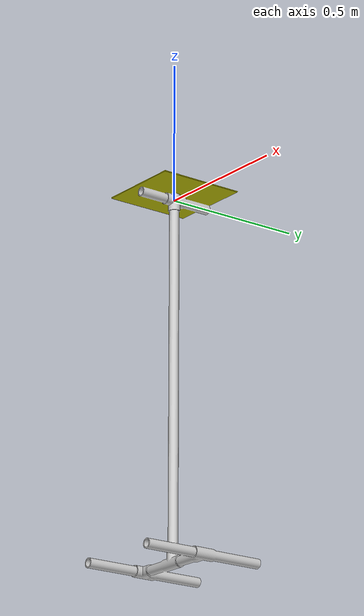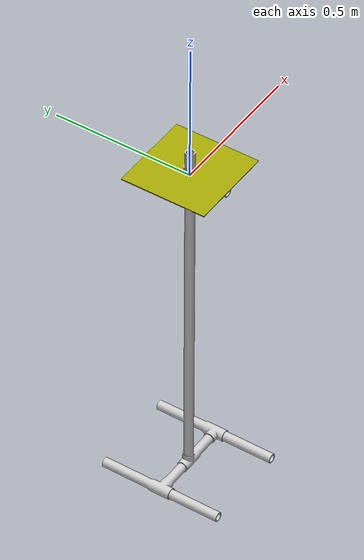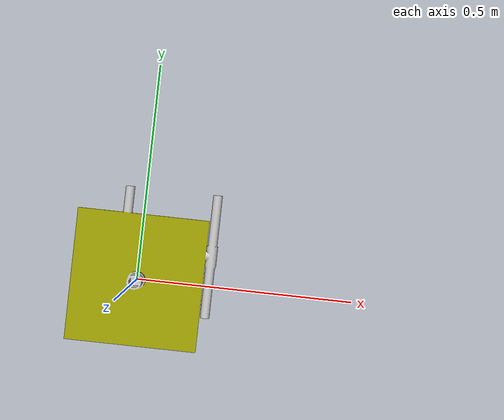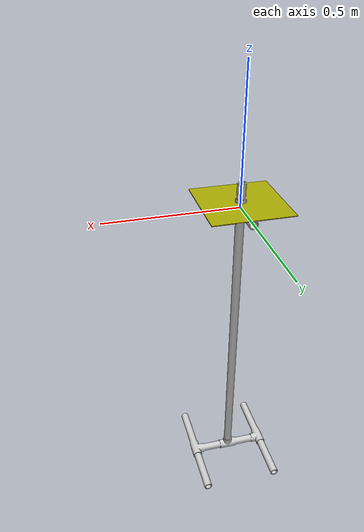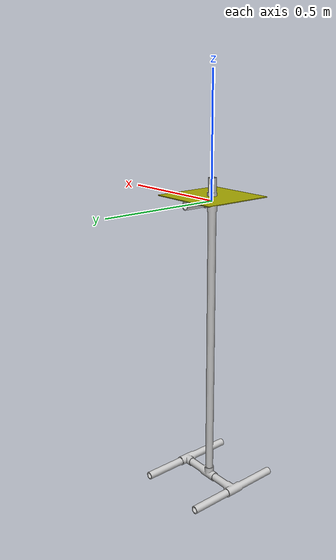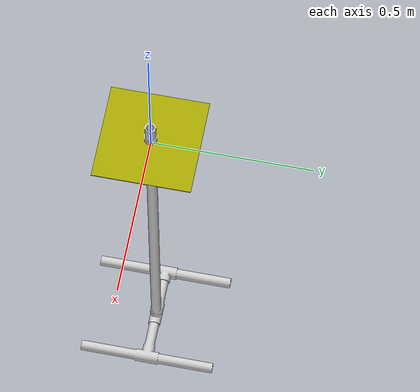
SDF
<?xml version='1.0'?>
<sdf version="1.6">
<model name="crucifix_platform">
    <link name="link">
      <inertial>
        <origin
          xyz="0.0 0.0 0.0"
          rpy="0 0 0" />
        <mass
          value="1.0" />
        <inertia
          ixx="1.0E-5"
          ixy="0.0"
          ixz="0.0"
          iyy="1.0E-5"
          iyz="0.0"
          izz="1.0E-5" />
      </inertial>
      <visual name="visual">
        <geometry>
          <mesh>
            <uri>model://crucifix_platform/CrucifixPlatform.dae</uri>
          </mesh>
        </geometry>
      </visual>
      <collision name="collision">
        <geometry>
          <mesh>
            <uri>model://crucifix_platform/CrucifixPlatform.dae</uri>
          </mesh>
        </geometry>
      </collision>
    </link>
  </model>
</sdf>
